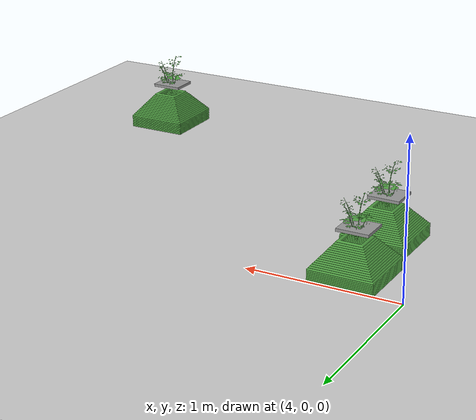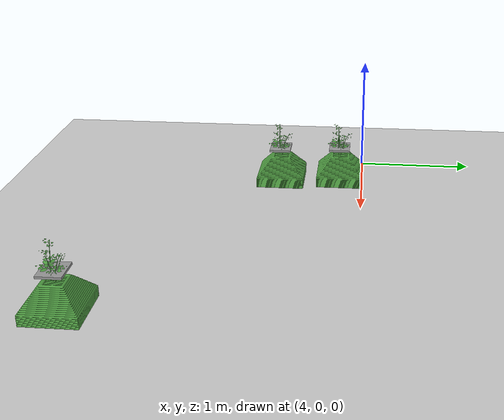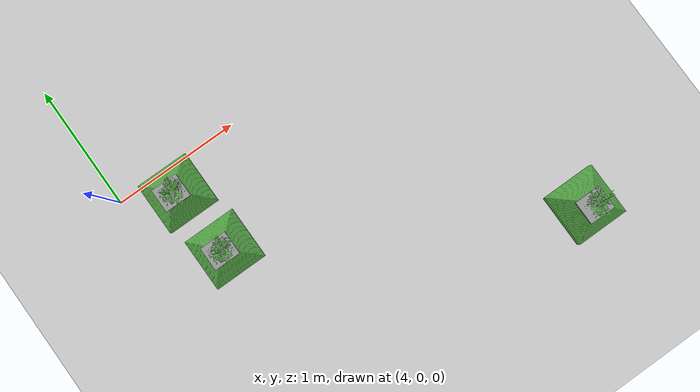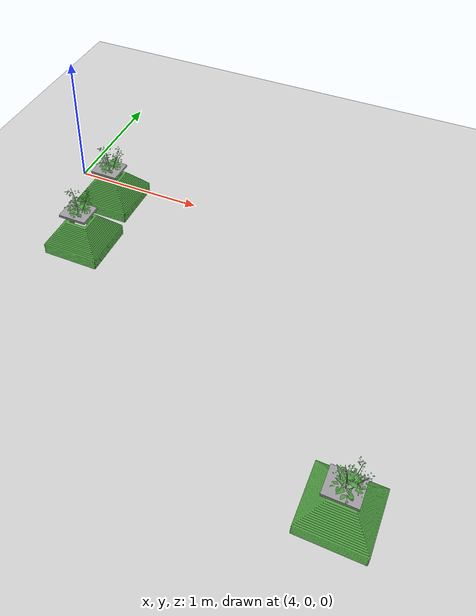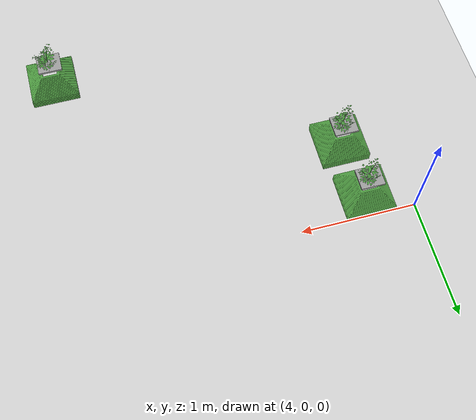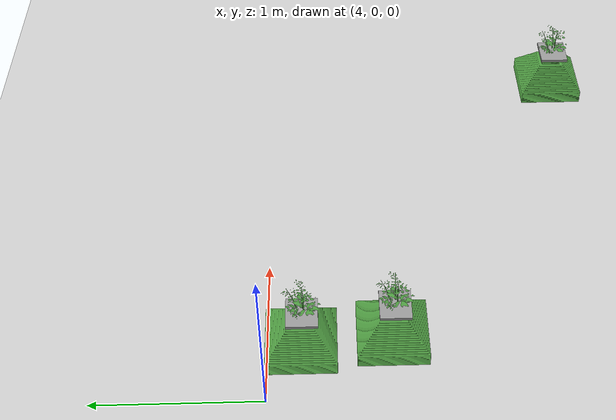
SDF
<sdf version="1.6">
 <world name="default">
  <model name="ground_plane">
   <static>1</static>
   <link name="link">
    <collision name="collision">
     <geometry><plane><normal>0 0 1</normal><size>100 100</size></plane></geometry>
     <surface><friction><ode><mu>100</mu><mu2>50</mu2></ode></friction></surface>
    </collision>
    <visual name="visual">
     <cast_shadows>0</cast_shadows>
     <geometry><plane><normal>0 0 1</normal><size>100 100</size></plane></geometry>
     <material>
      <script><uri>file://media/materials/scripts/gazebo.material</uri><name>Gazebo/Grey</name></script>
     </material>
    </visual>
   </link>
  </model>
  <model name="plant_96">
   <link name="link_0">
    <inertial>
     <mass>1</mass>
     <inertia>
      <ixx>0.0134051</ixx>
      <ixy>0</ixy>
      <ixz>0</ixz>
      <iyy>0.0134051</iyy>
      <iyz>0</iyz>
      <izz>0.0254102</izz>
     </inertia>
    </inertial>
    <gravity>0</gravity>
    <visual name="visual">
     <geometry><mesh><uri>model://square_pot/pot.stl</uri><scale>0.033 0.033 0.02</scale></mesh></geometry>
     <material>
      <lighting>1</lighting>
      <script><uri>file://media/materials/scripts/gazebo.material</uri><name>Gazebo/Grass</name></script>
      <ambient>0.3 0.3 0.3 1</ambient>
      <diffuse>0.7 0.7 0.7 1</diffuse>
      <specular>0.01 0.01 0.01 1</specular>
      <emissive>0 0 0 1</emissive>
      <shader type="vertex"><normal_map>__default__</normal_map></shader>
     </material>
    </visual>
    <collision name="collision">
     <pose>0 0 0.25 0 -0 0</pose>
     <geometry><box><size>0.4 0.4 0.4</size></box></geometry>
     <surface>
      <friction>
       <ode><mu>1</mu><mu2>1</mu2><fdir1>0 0 0</fdir1><slip1>0</slip1><slip2>0</slip2></ode>
       <torsional>
        <coefficient>1</coefficient>
        <patch_radius>0</patch_radius>
        <surface_radius>0</surface_radius>
        <use_patch_radius>1</use_patch_radius>
        <ode><slip>0</slip></ode>
       </torsional>
      </friction>
      <bounce><restitution_coefficient>0</restitution_coefficient><threshold>1e+06</threshold></bounce>
      <contact>
       <collide_without_contact>1</collide_without_contact>
       <collide_without_contact_bitmask>1</collide_without_contact_bitmask>
       <collide_bitmask>1</collide_bitmask>
       <ode>
        <soft_cfm>0</soft_cfm>
        <soft_erp>0.2</soft_erp>
        <kp>1e+13</kp>
        <kd>1</kd>
        <max_vel>0.01</max_vel>
        <min_depth>0</min_depth>
       </ode>
       <bullet>
        <split_impulse>1</split_impulse>
        <split_impulse_penetration_threshold>-0.01</split_impulse_penetration_threshold>
        <soft_cfm>0</soft_cfm>
        <soft_erp>0.2</soft_erp>
        <kp>1e+13</kp>
        <kd>1</kd>
       </bullet>
      </contact>
     </surface>
    </collision>
   </link>
   <link name="link_0_0">
    <pose>-0.011441 -0.008338 0.308474 0 -0 0</pose>
    <inertial>
     <mass>0.000736153</mass>
     <inertia>
      <ixx>2.11165e-06</ixx>
      <ixy>0</ixy>
      <ixz>0</ixz>
      <iyy>2.64382e-06</iyy>
      <iyz>0</iyz>
      <izz>4.70976e-06</izz>
     </inertia>
    </inertial>
    <visual name="visual">
     <geometry><box><size>0.206678 0.18452 0.019291</size></box></geometry>
     <material>
      <lighting>1</lighting>
      <script><uri>file://media/materials/scripts/gazebo.material</uri><name>Gazebo/Grey</name></script>
      <ambient>0.3 0.3 0.3 1</ambient>
      <diffuse>0.7 0.7 0.7 1</diffuse>
      <specular>0.01 0.01 0.01 1</specular>
      <emissive>0 0 0 1</emissive>
     </material>
    </visual>
    <collision name="collision">
     <geometry><box><size>0.206678 0.18452 0.019291</size></box></geometry>
     <surface>
      <friction>
       <ode><mu>1</mu><mu2>1</mu2><fdir1>0 0 0</fdir1><slip1>0</slip1><slip2>0</slip2></ode>
       <torsional>
        <coefficient>1</coefficient>
        <patch_radius>0</patch_radius>
        <surface_radius>0</surface_radius>
        <use_patch_radius>1</use_patch_radius>
        <ode><slip>0</slip></ode>
       </torsional>
      </friction>
      <bounce><restitution_coefficient>0</restitution_coefficient><threshold>1e+06</threshold></bounce>
      <contact>
       <collide_without_contact>0</collide_without_contact>
       <collide_without_contact_bitmask>1</collide_without_contact_bitmask>
       <collide_bitmask>1</collide_bitmask>
       <ode>
        <soft_cfm>0</soft_cfm>
        <soft_erp>0.2</soft_erp>
        <kp>1e+13</kp>
        <kd>1</kd>
        <max_vel>0.01</max_vel>
        <min_depth>0</min_depth>
       </ode>
       <bullet>
        <split_impulse>1</split_impulse>
        <split_impulse_penetration_threshold>-0.01</split_impulse_penetration_threshold>
        <soft_cfm>0</soft_cfm>
        <soft_erp>0.2</soft_erp>
        <kp>1e+13</kp>
        <kd>1</kd>
       </bullet>
      </contact>
     </surface>
    </collision>
   </link>
   <static>1</static>
   <pose>4.38769 -0.19911 0 0 -0 0</pose>
  </model>
  <model name="plant_97">
   <link name="link_0">
    <inertial>
     <mass>1</mass>
     <inertia>
      <ixx>0.0134051</ixx>
      <ixy>0</ixy>
      <ixz>0</ixz>
      <iyy>0.0134051</iyy>
      <iyz>0</iyz>
      <izz>0.0254102</izz>
     </inertia>
    </inertial>
    <gravity>0</gravity>
    <visual name="visual">
     <geometry><mesh><uri>model://square_pot/pot.stl</uri><scale>0.033 0.033 0.02</scale></mesh></geometry>
     <material>
      <lighting>1</lighting>
      <script><uri>file://media/materials/scripts/gazebo.material</uri><name>Gazebo/Grass</name></script>
      <ambient>0.3 0.3 0.3 1</ambient>
      <diffuse>0.7 0.7 0.7 1</diffuse>
      <specular>0.01 0.01 0.01 1</specular>
      <emissive>0 0 0 1</emissive>
      <shader type="vertex"><normal_map>__default__</normal_map></shader>
     </material>
    </visual>
    <collision name="collision">
     <pose>0 0 0.25 0 -0 0</pose>
     <geometry><box><size>0.4 0.4 0.4</size></box></geometry>
     <surface>
      <friction>
       <ode><mu>1</mu><mu2>1</mu2><fdir1>0 0 0</fdir1><slip1>0</slip1><slip2>0</slip2></ode>
       <torsional>
        <coefficient>1</coefficient>
        <patch_radius>0</patch_radius>
        <surface_radius>0</surface_radius>
        <use_patch_radius>1</use_patch_radius>
        <ode><slip>0</slip></ode>
       </torsional>
      </friction>
      <bounce><restitution_coefficient>0</restitution_coefficient><threshold>1e+06</threshold></bounce>
      <contact>
       <collide_without_contact>1</collide_without_contact>
       <collide_without_contact_bitmask>1</collide_without_contact_bitmask>
       <collide_bitmask>1</collide_bitmask>
       <ode>
        <soft_cfm>0</soft_cfm>
        <soft_erp>0.2</soft_erp>
        <kp>1e+13</kp>
        <kd>1</kd>
        <max_vel>0.01</max_vel>
        <min_depth>0</min_depth>
       </ode>
       <bullet>
        <split_impulse>1</split_impulse>
        <split_impulse_penetration_threshold>-0.01</split_impulse_penetration_threshold>
        <soft_cfm>0</soft_cfm>
        <soft_erp>0.2</soft_erp>
        <kp>1e+13</kp>
        <kd>1</kd>
       </bullet>
      </contact>
     </surface>
    </collision>
   </link>
   <link name="link_0_0">
    <pose>-0.011441 -0.008338 0.308474 0 -0 0</pose>
    <inertial>
     <mass>0.000736153</mass>
     <inertia>
      <ixx>2.11165e-06</ixx>
      <ixy>0</ixy>
      <ixz>0</ixz>
      <iyy>2.64382e-06</iyy>
      <iyz>0</iyz>
      <izz>4.70976e-06</izz>
     </inertia>
    </inertial>
    <visual name="visual">
     <geometry><box><size>0.206678 0.18452 0.019291</size></box></geometry>
     <material>
      <lighting>1</lighting>
      <script><uri>file://media/materials/scripts/gazebo.material</uri><name>Gazebo/Grey</name></script>
      <ambient>0.3 0.3 0.3 1</ambient>
      <diffuse>0.7 0.7 0.7 1</diffuse>
      <specular>0.01 0.01 0.01 1</specular>
      <emissive>0 0 0 1</emissive>
     </material>
    </visual>
    <collision name="collision">
     <geometry><box><size>0.206678 0.18452 0.019291</size></box></geometry>
     <surface>
      <friction>
       <ode><mu>1</mu><mu2>1</mu2><fdir1>0 0 0</fdir1><slip1>0</slip1><slip2>0</slip2></ode>
       <torsional>
        <coefficient>1</coefficient>
        <patch_radius>0</patch_radius>
        <surface_radius>0</surface_radius>
        <use_patch_radius>1</use_patch_radius>
        <ode><slip>0</slip></ode>
       </torsional>
      </friction>
      <bounce><restitution_coefficient>0</restitution_coefficient><threshold>1e+06</threshold></bounce>
      <contact>
       <collide_without_contact>0</collide_without_contact>
       <collide_without_contact_bitmask>1</collide_without_contact_bitmask>
       <collide_bitmask>1</collide_bitmask>
       <ode>
        <soft_cfm>0</soft_cfm>
        <soft_erp>0.2</soft_erp>
        <kp>1e+13</kp>
        <kd>1</kd>
        <max_vel>0.01</max_vel>
        <min_depth>0</min_depth>
       </ode>
       <bullet>
        <split_impulse>1</split_impulse>
        <split_impulse_penetration_threshold>-0.01</split_impulse_penetration_threshold>
        <soft_cfm>0</soft_cfm>
        <soft_erp>0.2</soft_erp>
        <kp>1e+13</kp>
        <kd>1</kd>
       </bullet>
      </contact>
     </surface>
    </collision>
   </link>
   <static>1</static>
   <pose>4.43447 -0.73334 0 0 -0 0</pose>
  </model>
  <model name="plant_103">
   <link name="link_0">
    <inertial>
     <mass>1</mass>
     <inertia>
      <ixx>0.0134051</ixx>
      <ixy>0</ixy>
      <ixz>0</ixz>
      <iyy>0.0134051</iyy>
      <iyz>0</iyz>
      <izz>0.0254102</izz>
     </inertia>
    </inertial>
    <gravity>0</gravity>
    <visual name="visual">
     <geometry><mesh><uri>model://square_pot/pot.stl</uri><scale>0.033 0.033 0.02</scale></mesh></geometry>
     <material>
      <lighting>1</lighting>
      <script><uri>file://media/materials/scripts/gazebo.material</uri><name>Gazebo/Grass</name></script>
      <ambient>0.3 0.3 0.3 1</ambient>
      <diffuse>0.7 0.7 0.7 1</diffuse>
      <specular>0.01 0.01 0.01 1</specular>
      <emissive>0 0 0 1</emissive>
      <shader type="vertex"><normal_map>__default__</normal_map></shader>
     </material>
    </visual>
    <collision name="collision">
     <pose>0 0 0.25 0 -0 0</pose>
     <geometry><box><size>0.4 0.4 0.4</size></box></geometry>
     <surface>
      <friction>
       <ode><mu>1</mu><mu2>1</mu2><fdir1>0 0 0</fdir1><slip1>0</slip1><slip2>0</slip2></ode>
       <torsional>
        <coefficient>1</coefficient>
        <patch_radius>0</patch_radius>
        <surface_radius>0</surface_radius>
        <use_patch_radius>1</use_patch_radius>
        <ode><slip>0</slip></ode>
       </torsional>
      </friction>
      <bounce><restitution_coefficient>0</restitution_coefficient><threshold>1e+06</threshold></bounce>
      <contact>
       <collide_without_contact>1</collide_without_contact>
       <collide_without_contact_bitmask>1</collide_without_contact_bitmask>
       <collide_bitmask>1</collide_bitmask>
       <ode>
        <soft_cfm>0</soft_cfm>
        <soft_erp>0.2</soft_erp>
        <kp>1e+13</kp>
        <kd>1</kd>
        <max_vel>0.01</max_vel>
        <min_depth>0</min_depth>
       </ode>
       <bullet>
        <split_impulse>1</split_impulse>
        <split_impulse_penetration_threshold>-0.01</split_impulse_penetration_threshold>
        <soft_cfm>0</soft_cfm>
        <soft_erp>0.2</soft_erp>
        <kp>1e+13</kp>
        <kd>1</kd>
       </bullet>
      </contact>
     </surface>
    </collision>
   </link>
   <link name="link_0_0">
    <pose>-0.011441 -0.008338 0.308474 0 -0 0</pose>
    <inertial>
     <mass>0.000736153</mass>
     <inertia>
      <ixx>2.11165e-06</ixx>
      <ixy>0</ixy>
      <ixz>0</ixz>
      <iyy>2.64382e-06</iyy>
      <iyz>0</iyz>
      <izz>4.70976e-06</izz>
     </inertia>
    </inertial>
    <visual name="visual">
     <geometry><box><size>0.206678 0.18452 0.019291</size></box></geometry>
     <material>
      <lighting>1</lighting>
      <script><uri>file://media/materials/scripts/gazebo.material</uri><name>Gazebo/Grey</name></script>
      <ambient>0.3 0.3 0.3 1</ambient>
      <diffuse>0.7 0.7 0.7 1</diffuse>
      <specular>0.01 0.01 0.01 1</specular>
      <emissive>0 0 0 1</emissive>
     </material>
    </visual>
    <collision name="collision">
     <geometry><box><size>0.206678 0.18452 0.019291</size></box></geometry>
     <surface>
      <friction>
       <ode><mu>1</mu><mu2>1</mu2><fdir1>0 0 0</fdir1><slip1>0</slip1><slip2>0</slip2></ode>
       <torsional>
        <coefficient>1</coefficient>
        <patch_radius>0</patch_radius>
        <surface_radius>0</surface_radius>
        <use_patch_radius>1</use_patch_radius>
        <ode><slip>0</slip></ode>
       </torsional>
      </friction>
      <bounce><restitution_coefficient>0</restitution_coefficient><threshold>1e+06</threshold></bounce>
      <contact>
       <collide_without_contact>0</collide_without_contact>
       <collide_without_contact_bitmask>1</collide_without_contact_bitmask>
       <collide_bitmask>1</collide_bitmask>
       <ode>
        <soft_cfm>0</soft_cfm>
        <soft_erp>0.2</soft_erp>
        <kp>1e+13</kp>
        <kd>1</kd>
        <max_vel>0.01</max_vel>
        <min_depth>0</min_depth>
       </ode>
       <bullet>
        <split_impulse>1</split_impulse>
        <split_impulse_penetration_threshold>-0.01</split_impulse_penetration_threshold>
        <soft_cfm>0</soft_cfm>
        <soft_erp>0.2</soft_erp>
        <kp>1e+13</kp>
        <kd>1</kd>
       </bullet>
      </contact>
     </surface>
    </collision>
   </link>
   <static>1</static>
   <pose>6.76216 -2.00117 0 0 -0 0</pose>
  </model>
 </world>
</sdf>
